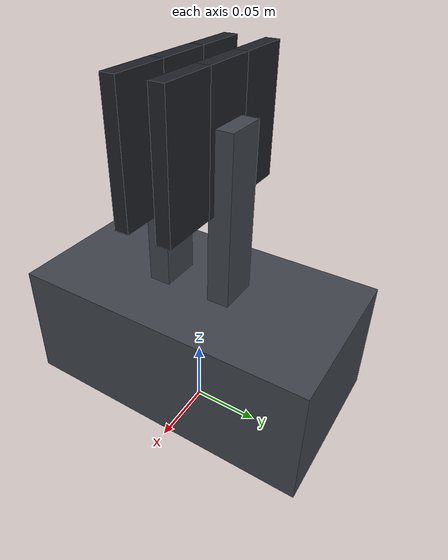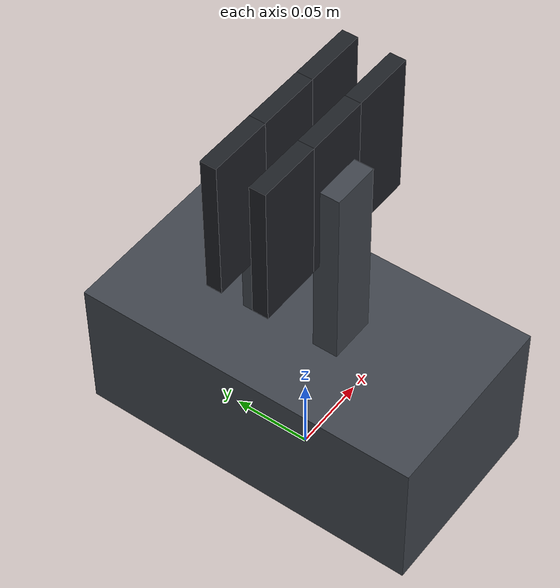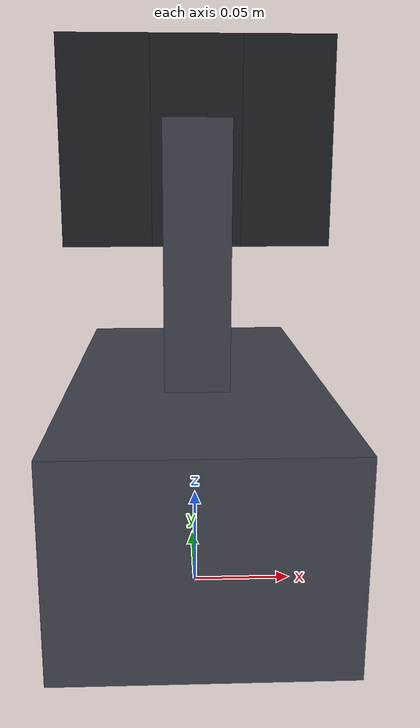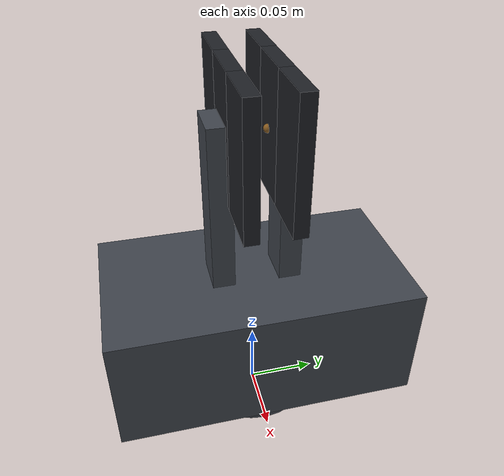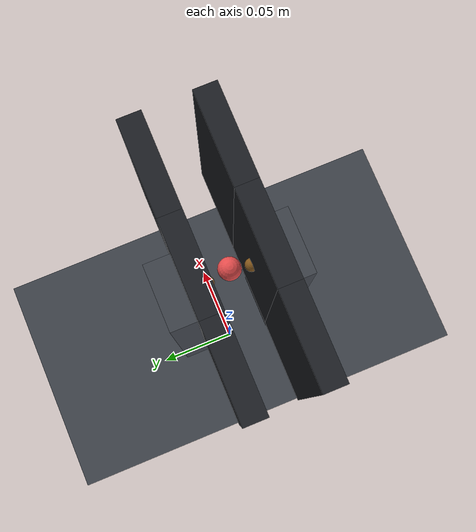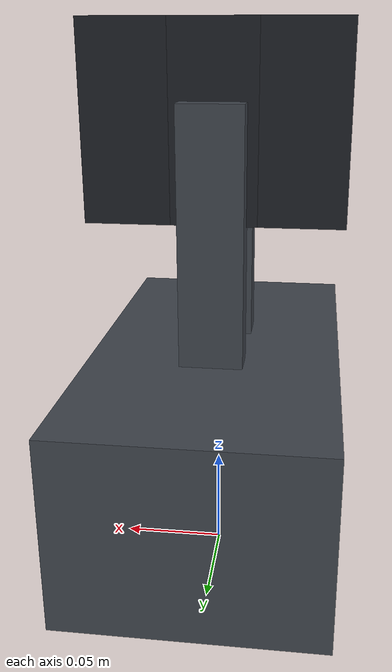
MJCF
<mujoco model="jaw_gripper">
  <compiler angle="radian" autolimits="true"/>

  <default>
    <default class="jaw">
      <geom condim="4" friction="0.5 0.05 0.001" solref="0.004 1" solimp="0.95 0.99 0.001"
            rgba="0.25 0.27 0.30 1"/>
      <joint type="slide" axis="0 1 0" damping="200" armature="0.2"/>
    </default>
  </default>

  <worldbody>
    <body name="gripper_base" childclass="jaw">
      <inertial pos="0 0 0.06" mass="2.1" diaginertia="0.012 0.012 0.008"/>
      <geom name="coupler" type="cylinder" size="0.045 0.012" pos="0 0 0.012"/>
      <geom name="body_block" type="box" size="0.060 0.110 0.045" pos="0 0 0.069"/>

      <!-- Tool centre point: midway between the closed pads, 10 mm below the pads' mid height. -->
      <site name="tcp" pos="0 0 0.234" size="0.005" rgba="0.9 0.3 0.3 0.9"/>
      <site name="grasp_axis" pos="0 0 0.234" size="0.004" rgba="0.3 0.9 0.3 0.6"/>

      <body name="finger_left" pos="0 0.020 0.114">
        <inertial pos="0 0 0.07" mass="0.25" diaginertia="0.0012 0.0012 0.0002"/>
        <joint name="finger_left_joint" range="0 0.080"/>
        <geom name="finger_left_arm" type="box" size="0.015 0.008 0.060" pos="0 0.004 0.060"/>
        <geom name="finger_left_pad" type="box" size="0.020 0.005 0.045" pos="0 -0.005 0.110"
              rgba="0.12 0.13 0.15 1"/>
        <geom name="finger_left_pad_fore" type="box" size="0.020 0.005 0.045" pos="0.040 -0.005 0.110"
              rgba="0.12 0.13 0.15 1"/>
        <geom name="finger_left_pad_aft" type="box" size="0.020 0.005 0.045" pos="-0.040 -0.005 0.110"
              rgba="0.12 0.13 0.15 1"/>
        <site name="pad_left" pos="0 -0.010 0.110" size="0.003" rgba="0.9 0.6 0.2 0.6"/>
      </body>

      <body name="finger_right" pos="0 -0.020 0.114">
        <inertial pos="0 0 0.07" mass="0.25" diaginertia="0.0012 0.0012 0.0002"/>
        <joint name="finger_right_joint" range="-0.080 0"/>
        <geom name="finger_right_arm" type="box" size="0.015 0.008 0.060" pos="0 -0.004 0.060"/>
        <geom name="finger_right_pad" type="box" size="0.020 0.005 0.045" pos="0 0.005 0.110"
              rgba="0.12 0.13 0.15 1"/>
        <geom name="finger_right_pad_fore" type="box" size="0.020 0.005 0.045" pos="0.040 0.005 0.110"
              rgba="0.12 0.13 0.15 1"/>
        <geom name="finger_right_pad_aft" type="box" size="0.020 0.005 0.045" pos="-0.040 0.005 0.110"
              rgba="0.12 0.13 0.15 1"/>
        <site name="pad_right" pos="0 0.010 0.110" size="0.003" rgba="0.9 0.6 0.2 0.6"/>
      </body>

      <camera name="wrist" pos="0 -0.12 0.07" quat="0.9239 0.3827 0 0" fovy="58"/>
    </body>
  </worldbody>

  <!-- MuJoCo skips parent-child contacts only when the parent moves. Bolted to
       a fixed mount, the base touched its own finger arms and jammed them. -->
  <contact>
    <exclude body1="gripper_base" body2="finger_left"/>
    <exclude body1="gripper_base" body2="finger_right"/>
    <exclude body1="finger_left" body2="finger_right"/>
  </contact>

  <equality>
    <!-- Stiff: at the default softness the 1800 N actuator stretched the coupling
         and the jaws closed 48 mm out of step. -->
    <joint name="finger_coupling" joint1="finger_left_joint" joint2="finger_right_joint"
           polycoef="0 -1 0 0 0" solref="0.004 1" solimp="0.99 0.999 0.0001"/>
  </equality>

  <actuator>
    <!-- Stiff enough that the 1800 N limit, not the servo gain, sets the force on
         anything wider than about 40 mm, as an electric gripper's force mode does. -->
    <position name="grip" joint="finger_left_joint" kp="100000" kv="1000"
              ctrlrange="0 0.080" forcerange="-1800 1800"/>
  </actuator>

  <sensor>
    <jointpos name="grip_pos" joint="finger_left_joint"/>
    <force name="pad_left_force" site="pad_left"/>
    <force name="pad_right_force" site="pad_right"/>
  </sensor>
</mujoco>
